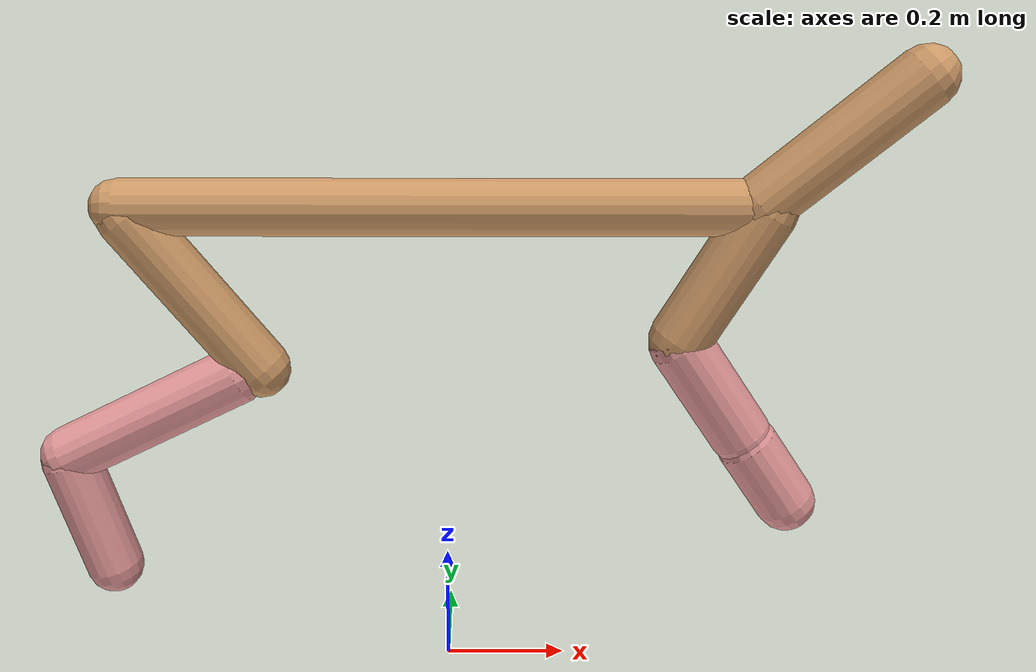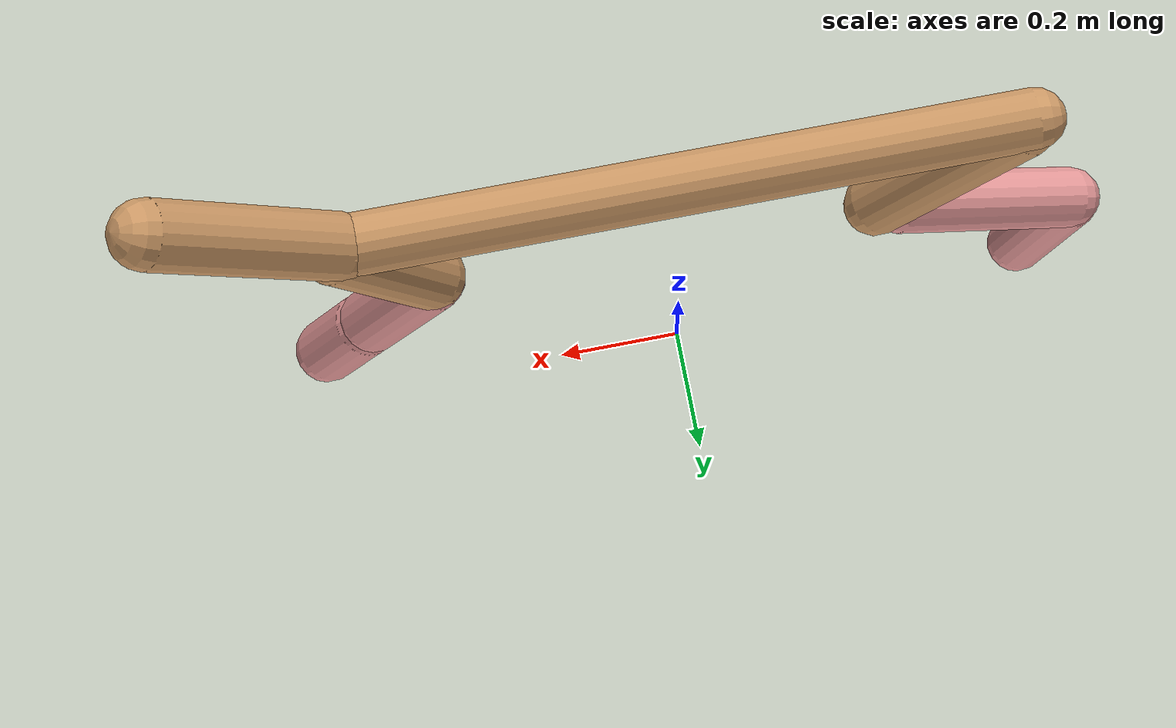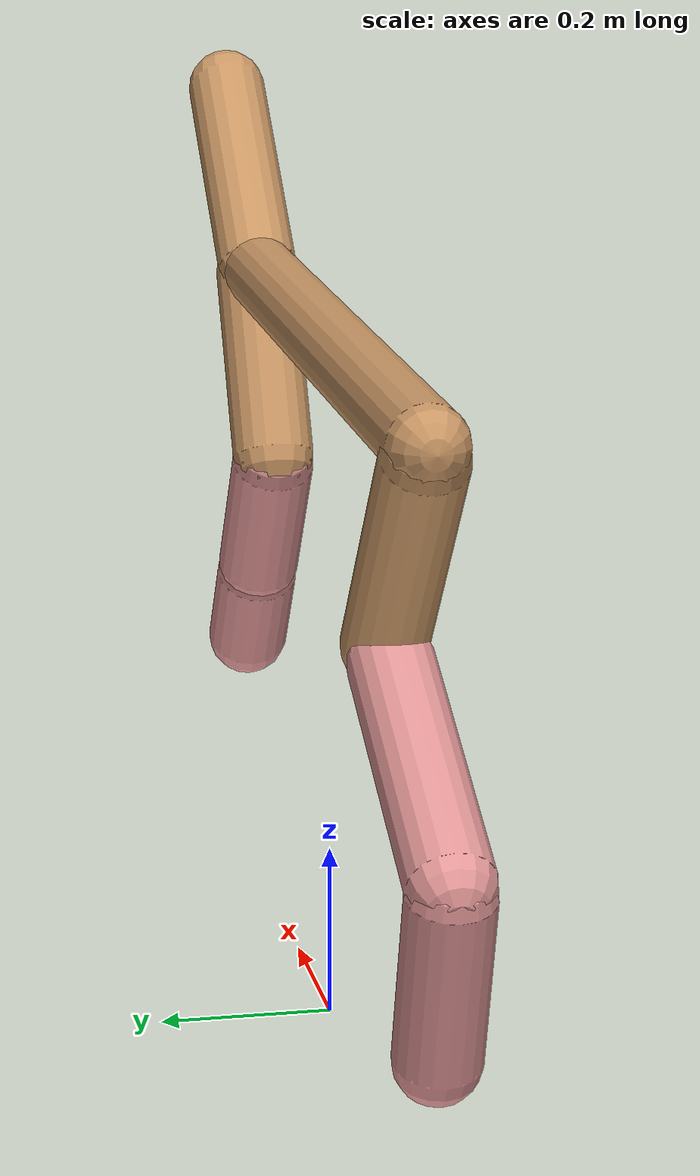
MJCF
<mujoco model="cheetah">
  <compiler angle="radian" coordinate="local" inertiafromgeom="true" settotalmass="14" />
  <default>
    <joint armature=".1" damping=".01" limited="true" solimplimit="0 .8 .03" solreflimit=".02 1" stiffness="8" />
    <geom conaffinity="0" condim="3" contype="1" friction="0.8 .1 .1" rgba="0.8 0.6 .4 1" solimp="0.0 0.8 0.01" solref="0.02 1" />
    <motor ctrllimited="true" ctrlrange="-1 1" />
  </default>
  <size nstack="300000" nuser_geom="1" />
  <option gravity="0 0 -9.81" timestep="0.01" />
  <worldbody>
    <body name="torso" pos="0.0 0.0 0.7981009396093822">
      <joint armature="0" axis="1 0 0" damping="0" limited="false" name="ignorex" pos="0 0 0" stiffness="0" type="slide" />
      <joint armature="0" axis="0 0 1" damping="0" limited="false" name="ignorez" pos="0 0 0" stiffness="0" type="slide" />
      <joint armature="0" axis="0 1 0" damping="0" limited="false" name="ignorey" pos="0 0 0" stiffness="0" type="hinge" />
      <geom fromto="-0.5 0.0 0.0 0.4949452833656662 0.0 0.0" name="torso" size="0.04445826958671587" type="capsule" />
      <geom axisangle="0 1 0 .87" name="head" pos="0.5949452833656662 0.0 0.1" size="0.04886054126667719 0.15" type="capsule" />

      <body name="bthigh" pos="-.5 0 0">
        <joint axis="0 1 0" damping="6" name="bthigh" pos="0 0 0" range="-.52 1.05" stiffness="240" type="hinge" />
        <geom axisangle="0 1 0 -3.8" name="bthigh" pos="0.10734992693792322 0.0 -0.13955490501930018" size="0.04752714810404455 0.15705477647742408" type="capsule" />
        <body name="bshin" pos="0.17469985387584644 0.0 -0.26910981003860035">
          <joint axis="0 1 0" damping="4.5" name="bshin" pos="0 0 0" range="-.785 .785" stiffness="180" type="hinge" />
          <geom axisangle="0 1 0 -2.03" name="bshin" pos="-0.15115391709948375 0.0 -0.07557695854974188" rgba="0.9 0.6 0.6 1" size="0.04752714810404455 0.16247045842492147" type="capsule" />
          <body name="bfoot" pos="-0.3023078341989675 0.0 -0.15115391709948375">
            <joint axis="0 1 0" damping="3" name="bfoot" pos="0 0 0" range="-.4 .785" stiffness="120" type="hinge" />
            <geom axisangle="0 1 0 -.27" name="bfoot" pos="0.03230904288119423 0.0 -0.10446590531586136" rgba="0.9 0.6 0.6 1" size="0.04752714810404455 0.1018148206129508" type="capsule" />
            <inertial mass="10" />
          </body>
        </body>
      </body>
      <body name="fthigh" pos="0.49494528336566623 0.0 0.0">
        <joint axis="0 1 0" damping="4.5" name="fthigh" pos="0 0 0" range="-1.5 0.8" stiffness="180" type="hinge" />
        <geom axisangle="0 1 0 .52" name="fthigh" pos="-0.0638480401653291 0.0 -0.10945378314056417" size="0.050047638852284 0.12079060608164138" type="capsule" />
        <body name="fshin" pos="-0.1276960803306582 0.0 -0.21890756628112834">
          <joint axis="0 1 0" damping="3" name="fshin" pos="0 0 0" range="-1.2 1.1" stiffness="120" type="hinge" />
          <geom axisangle="0 1 0 -.6" name="fshin" pos="0.05930271135653718 0.0 -0.08211144649366686" rgba="0.9 0.6 0.6 1" size="0.050047638852284 0.09626920484702245" type="capsule" />
          <body name="ffoot" pos="0.11860542271307437 0.0 -0.16422289298733372">
            <joint axis="0 1 0" damping="1.5" name="ffoot" pos="0 0 0" range="-3.1 -0.3" stiffness="60" type="hinge" />
            <geom axisangle="0 1 0 -.6" name="ffoot" pos="0.0415250934491109 0.0 -0.06459458980972807" rgba="0.9 0.6 0.6 1" size="0.050047638852284 0.06357400320086389" type="capsule" />
            <inertial mass="10" />
          </body>
        </body>
      </body>
    </body>
  </worldbody>
  <actuator>
    <motor gear="120" joint="bthigh" name="bthigh" />
    <motor gear="90" joint="bshin" name="bshin" />
    <motor gear="60" joint="bfoot" name="bfoot" />
    <motor gear="120" joint="fthigh" name="fthigh" />
    <motor gear="60" joint="fshin" name="fshin" />
    <motor gear="30" joint="ffoot" name="ffoot" />
  </actuator>
</mujoco>
